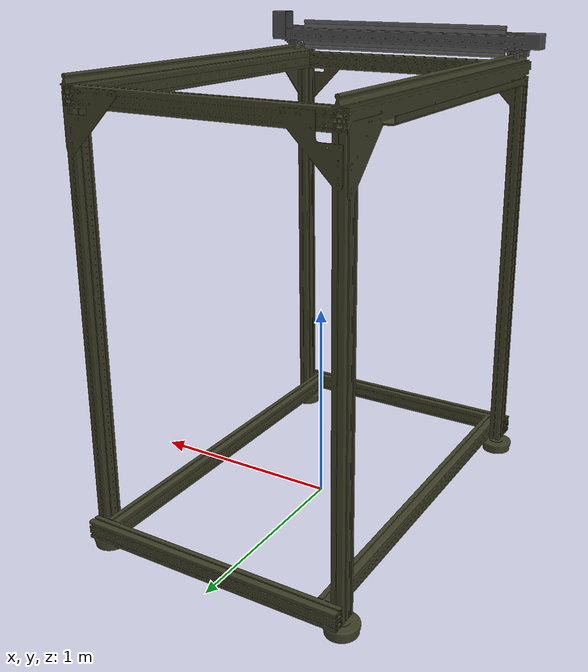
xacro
<?xml version="1.0"?>
<!-- Revolute-Revolute Manipulator -->
<robot name="prise3" xmlns:xacro="http://www.ros.org/wiki/xacro">

  <link name="world"/>

  <joint name="fixed" type="fixed">
    <parent link="world"/>
    <child link="base_link"/>
  </joint>

  <link  name="base_link">
    <inertial>
      <origin  xyz="0 0 0" rpy="0 0 0" />
      <mass value="54.7927946688811" />
      <inertia
        ixx="76.8709047512236"
        ixy="-0.317641732156655"
        ixz="-2.72714300565647"
        iyy="59.4673166498106"
        iyz="2.93869533447697"
        izz="54.3371716853488" />
    </inertial>
    <visual>
      <origin xyz="0 0 0" rpy="0 0 0" />
      <geometry>
        <mesh
          filename="package://prise3/meshes/base_linkv2.stl" />
      </geometry>
      <material
        name="">
		<color  rgba="0.25 0.25 0.16 1" />
      </material>
    </visual>
    <collision>
      <origin xyz="0 0 0" rpy="0 0 0" />
      <geometry>
        <mesh filename="package://prise3/meshes/base_linkv2.stl" />
      </geometry>
    </collision>
  </link>

  <link name="axe_x_link">
    <inertial>
      <origin xyz="0 0 0"  rpy="0 0 0" />
      <mass  value="3.24718562315346" />
      <inertia
        ixx="76.8709047512236"
        ixy="-0.317641732156655"
        ixz="-2.72714300565647"
        iyy="59.4673166498106"
        iyz="2.93869533447697"
        izz="54.3371716853488" />
	<mu>2.2</mu>
	<mu2>0.2</mu2>
	<kp>1.2</kp>
    </inertial>

    <visual>

   <origin xyz="0 0 0" rpy="0 0 0" />
      <geometry>
        <mesh  filename="package://prise3/meshes/axe_xv2.stl" />
      </geometry>
      <material  name="">
        <color  rgba="0.32 0.32 0.32 1" />
      </material>
    </visual>
    <collision>
      <origin  xyz="0 0 0"  rpy="0 0 0" />
      <geometry>
        <mesh filename="package://prise3/meshes/axe_xv2.stl" />
      </geometry>
    </collision>
  </link>

  <joint name="axe_x_joint" type="prismatic">
          <origin xyz="0 -0.86 2.278" rpy="0 0 0" />
    <parent link="base_link" />
    <child  link="axe_x_link" />
     <axis  xyz="0 1 0" />
    <limit lower="0" upper="1.6" effort="1" velocity="0.5" />
     <dynamics damping ="1">     </dynamics>

  </joint>

<gazebo>
  <plugin name="gazebo_ros_control" filename="libgazebo_ros_control.so">
    <robotNamespace>/prise3</robotNamespace>
  </plugin>
</gazebo>

<transmission name="transmission_x">
    <type>transmission_interface/SimpleTransmission</type>
    <joint name="axe_x_joint">
      <hardwareInterface>EffortJointInterface</hardwareInterface>
    </joint>
    <actuator name="motor1">
      <hardwareInterface>EffortJointInterface</hardwareInterface>
      <mechanicalReduction>1</mechanicalReduction>
    </actuator>
  </transmission>

</robot>
